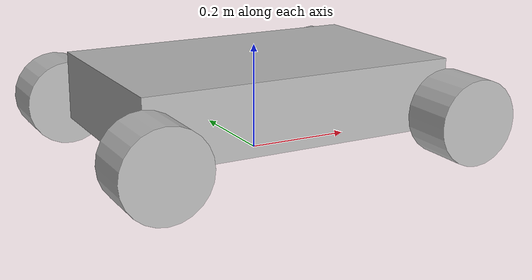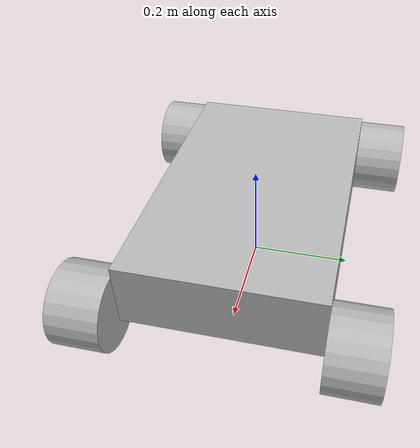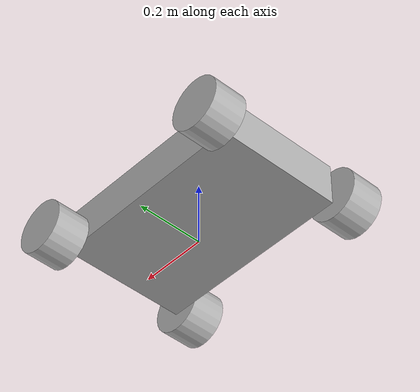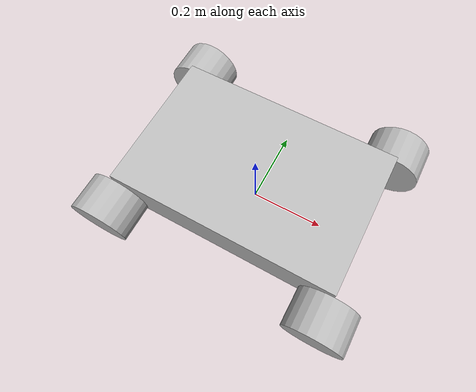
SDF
<?xml version='1.0'?>
<sdf version="1.4">
  <model name="ugv">

        <link name='chassis'>
          <pose>0 0 .115 0 0 0</pose>

          <inertial>
            <mass value="23" />
	      <origin xyz="0 0 .180" />
	      <inertia ixx="23.0" ixy="0.0" ixz="0.0"
		iyy="23.0" iyz="0.0"
		izz="23.0" />
	   </inertial>

          <collision name='collision'>
            <geometry>
              <box>
                <size>.600 .380 .130</size>
              </box>
            </geometry>
          </collision>

          <visual name='visual'>
            <geometry>
              <box>
                <size>.600 .380 .130</size>
              </box>
            </geometry>
          </visual>
      </link>
      <link name="left_front_wheel">
        <pose>0.3 0.240 0.08 0 1.5707 1.5707</pose>
        <collision name="collision">
          <geometry>
            <cylinder>
              <radius>.08</radius>
              <length>.1</length>
            </cylinder>
          </geometry>
        </collision>
        <visual name="visual">
          <geometry>
            <cylinder>
              <radius>.08</radius>
              <length>.1</length>
            </cylinder>
          </geometry>
        </visual>
      </link>

      <link name="left_rear_wheel">
        <pose>-0.3 0.240 0.08 0 1.5707 1.5707</pose>
        <collision name="collision">
          <geometry>
            <cylinder>
              <radius>.08</radius>
              <length>.1</length>
            </cylinder>
          </geometry>
        </collision>
        <visual name="visual">
          <geometry>
            <cylinder>
              <radius>.08</radius>
              <length>.1</length>
            </cylinder>
          </geometry>
        </visual>
      </link>

      <link name="right_front_wheel">
        <pose>0.3 -0.240 0.08 0 1.5707 1.5707</pose>
        <collision name="collision">
          <geometry>
            <cylinder>
              <radius>.08</radius>
              <length>.1</length>
            </cylinder>
          </geometry>
        </collision>
        <visual name="visual">
          <geometry>
            <cylinder>
              <radius>.08</radius>
              <length>.1</length>
            </cylinder>
          </geometry>
        </visual>
      </link>

      <link name="right_rear_wheel">
        <pose>-0.3 -0.240 0.08 0 1.5707 1.5707</pose>
        <collision name="collision">
          <geometry>
            <cylinder>
              <radius>.08</radius>
              <length>.1</length>
            </cylinder>
          </geometry>
        </collision>
        <visual name="visual">
          <geometry>
            <cylinder>
              <radius>.08</radius>
              <length>.1</length>
            </cylinder>
          </geometry>
        </visual>
      </link>

      <joint type="revolute" name="left_front_wheel_hinge">
        <pose>0 0 -0.03 0 0 0</pose>
        <child>left_front_wheel</child>
        <parent>chassis</parent>
        <axis>
          <xyz>0 1 0</xyz>
        </axis>
      </joint>

      <joint type="revolute" name="left_rear_wheel_hinge">
        <pose>0 0 -0.03 0 0 0</pose>
        <child>left_rear_wheel</child>
        <parent>chassis</parent>
        <axis>
          <xyz>0 1 0</xyz>
        </axis>
      </joint>

      <joint type="revolute" name="right_front_wheel_hinge">
        <pose>0 0 0.03 0 0 0</pose>
        <child>right_front_wheel</child>
        <parent>chassis</parent>
        <axis>
          <xyz>0 1 0</xyz>
        </axis>
      </joint>

      <joint type="revolute" name="right_rear_wheel_hinge">
        <pose>0 0 0.03 0 0 0</pose>
        <child>right_rear_wheel</child>
        <parent>chassis</parent>
        <axis>
          <xyz>0 1 0</xyz>
        </axis>
      </joint>

    <plugin name="object_controller" filename="libgazebo_ros_planar_move.so">
      <commandTopic>/ugv/cmd_vel</commandTopic>
      <odometryRate>20.0</odometryRate>
      <robotBaseFrame>chassis</robotBaseFrame>
    </plugin>
  </model>
</sdf>
